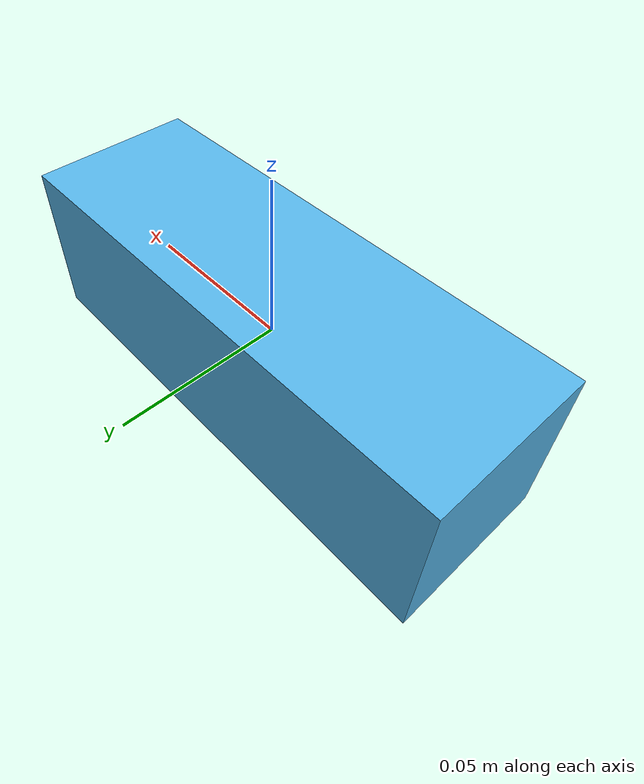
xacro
<?xml version="1.0"?>
<robot xmlns:xacro="http://www.ros.org/wiki/xacro">
    <xacro:include filename="colors.xacro" />

    <!-- Check here if need inertia https://www.youtube.com/watch?v=BcjHyhV0kIs -->

    <link name="base_link">
    </link>

    <joint name="chassis_joint" type="fixed">
        <parent link="base_link"/>
        <child link="chassis"/>
        <origin xyz="0 0 0"/>
    </joint>

    <link name="chassis">
        <visual>
            <geometry>
                <box size="0.15 0.05 0.05"/>
                <material name="white"/>
            </geometry>
        </visual>
    </link>
</robot>

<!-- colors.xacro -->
<robot xmlns:xacro="http://www.ros.org/wiki/xacro">
    <material name="white">
        <color rgba="1 1 1 1"/>
    </material>
</robot>
